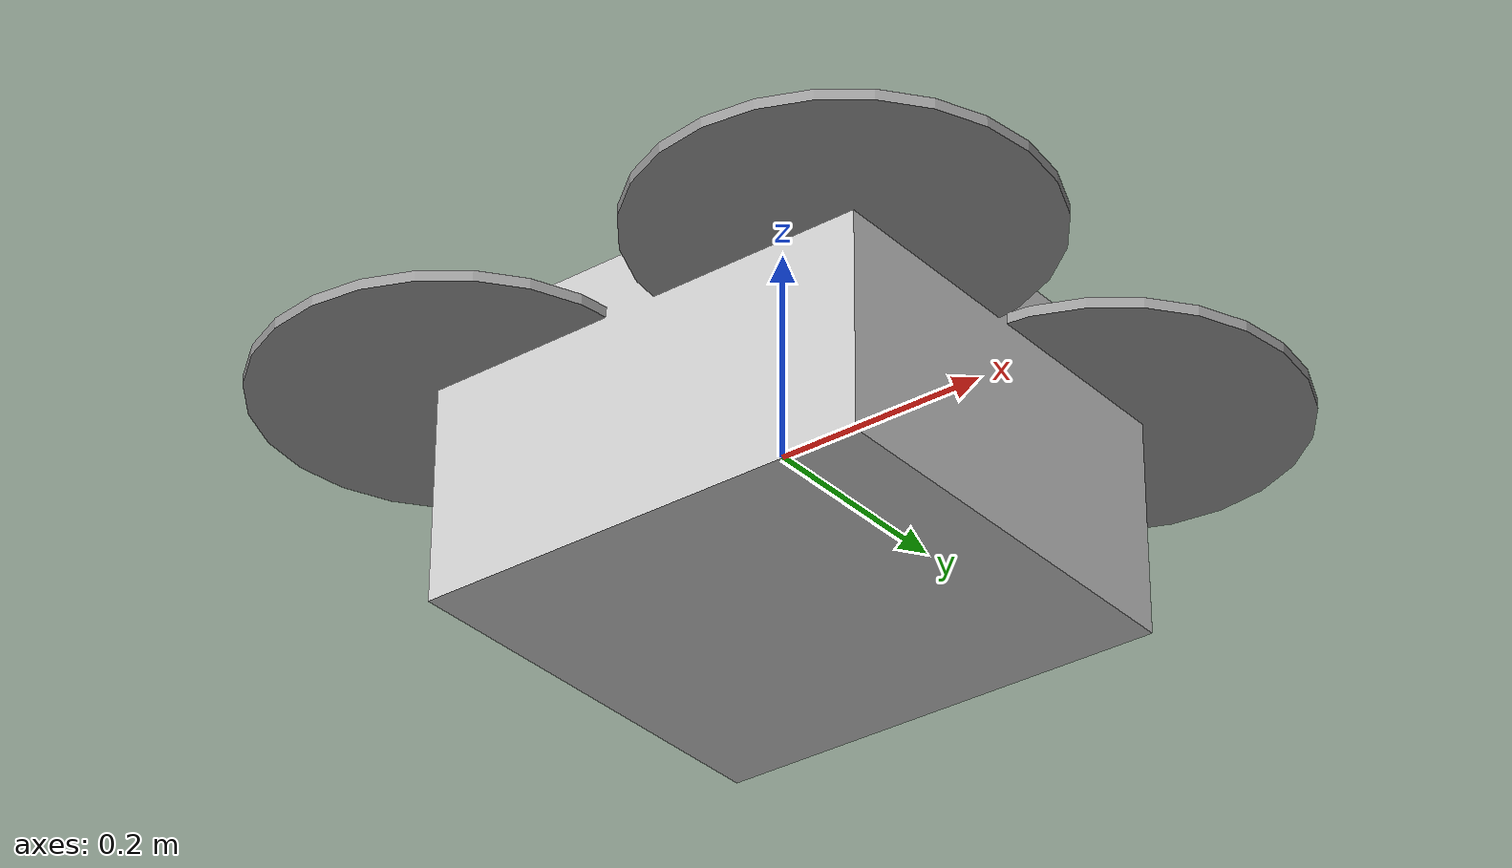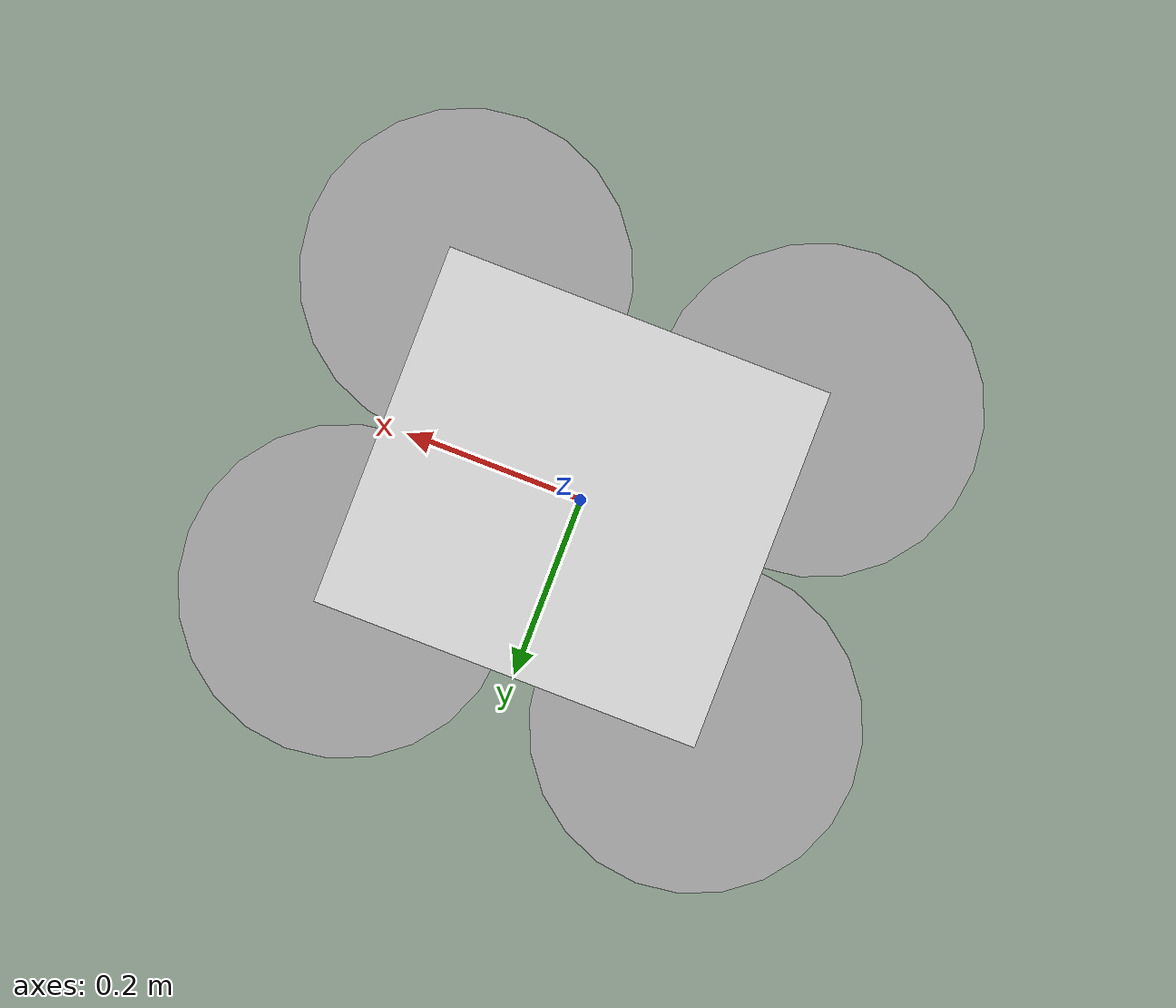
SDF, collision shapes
<?xml version="1.0"?>
<sdf version="1.6">
  <model name="coro_bandicoot_sensor_config_1">
    <pose>0 0 0 0 0 0</pose>
    <link name="base_link">
      <pose frame="">0 0 0 0 -0 0</pose>
      <inertial>
        <pose frame="">0 0 0 0 -0 0</pose>
        <mass>3.182</mass>
        <inertia>
          <ixx>0.0298</ixx>
          <iyy>0.0298</iyy>
          <izz>0.0477</izz>
        </inertia>
      </inertial>
      <collision name="base_link_inertia_collision">
        <pose frame="">0.01 0 -0.0275 0 -0 0</pose>
        <geometry>
          <box>
            <size>0.43 0.4 0.255</size>
          </box>
        </geometry>
      </collision>

      <visual name="plate1_visual">
        <pose>0.0 0.0 0.0 0 0 0</pose>
        <geometry>
	  <box>
	    <size>0.14 0.14 0.001</size>
	  </box>
        </geometry>
        <material>
	  <ambient>0.8 0.8 0.8 1</ambient>
	  <diffuse>0.8 0.8 0.8 1</diffuse>
        </material>
      </visual>
      <visual name="plate2_visual">
        <pose>0.0 0.0 -0.04 0 0 0</pose>
        <geometry>
	  <box>
	    <size>0.14 0.14 0.001</size>
	  </box>
        </geometry>
        <material>
	  <ambient>0.8 0.8 0.8 1</ambient>
	  <diffuse>0.8 0.8 0.8 1</diffuse>
        </material>
      </visual>

      <visual name="computer_visual">
        <pose>0.02 0.01 0.01 0 0 0</pose>
        <geometry>
	  <box>
	    <size>0.1 0.1 0.02</size>
	  </box>
        </geometry>
        <material>
	  <ambient>0.01 0.01 0.01 1</ambient>
	  <diffuse>0.01 0.01 0.01 1</diffuse>
        </material>
      </visual>
      <visual name="battery1_visual">
        <pose>0.13 0.12 -0.04 0 0 0.74</pose>
        <geometry>
	  <box>
	    <size>0.14 0.04 0.06</size>
	  </box>
        </geometry>
        <material>
	  <ambient>0.01 0.01 0.8 1</ambient>
	  <diffuse>0.01 0.01 0.8 1</diffuse>
        </material>
      </visual>
      <visual name="battery2_visual">
        <pose>-0.13 -0.12 -0.04 0 0 0.74</pose>
        <geometry>
	  <box>
	    <size>0.14 0.04 0.06</size>
	  </box>
        </geometry>
        <material>
	  <ambient>0.01 0.01 0.8 1</ambient>
	  <diffuse>0.01 0.01 0.8 1</diffuse>
        </material>
      </visual>

      <visual name="leg1_visual">
        <pose>0.2 0.18 -0.08 0 0 0</pose>
        <geometry>
	  <cylinder>
            <length>0.15</length>
            <radius>0.005</radius>
	  </cylinder>
        </geometry>
        <material>
	  <ambient>0.06 0.06 0.06 1</ambient>
	  <diffuse>0.06 0.06 0.06 1</diffuse>
        </material>
      </visual>
      <visual name="leg2_visual">
        <pose>0.2 -0.18 -0.08 0 0 0</pose>
        <geometry>
	  <cylinder>
            <length>0.15</length>
            <radius>0.005</radius>
	  </cylinder>
        </geometry>
        <material>
	  <ambient>0.06 0.06 0.06 1</ambient>
	  <diffuse>0.06 0.06 0.06 1</diffuse>
        </material>
      </visual>
      <visual name="leg3_visual">
        <pose>-0.2 0.18 -0.08 0 0 0</pose>
        <geometry>
	  <cylinder>
            <length>0.15</length>
            <radius>0.005</radius>
	  </cylinder>
        </geometry>
        <material>
	  <ambient>0.06 0.06 0.06 1</ambient>
	  <diffuse>0.06 0.06 0.06 1</diffuse>
        </material>
      </visual>
      <visual name="leg4_visual">
        <pose>-0.2 -0.18 -0.08 0 0 0</pose>
        <geometry>
	  <cylinder>
            <length>0.15</length>
            <radius>0.005</radius>
	  </cylinder>
        </geometry>
        <material>
	  <ambient>0.06 0.06 0.06 1</ambient>
	  <diffuse>0.06 0.06 0.06 1</diffuse>
        </material>
      </visual>

      <visual name="antenna1_visual">
        <pose>0.05 -0.05 0.05 0 0 0</pose>
        <geometry>
	  <cylinder>
            <length>0.1</length>
            <radius>0.005</radius>
	  </cylinder>
        </geometry>
      </visual>
      <visual name="antenna2_visual">
        <pose>-0.05 -0.05 0.05 0 0 0</pose>
        <geometry>
	  <cylinder>
            <length>0.1</length>
            <radius>0.005</radius>
	  </cylinder>
        </geometry>
        <material>
	  <ambient>0.06 0.06 0.06 1</ambient>
	  <diffuse>0.06 0.06 0.06 1</diffuse>
        </material>
      </visual>

      <visual name="arm1_visual">
        <pose>0.13 0.12 -0.005 0 0 0.74</pose>
        <geometry>
	  <box>
	    <size>0.21 0.03 0.01</size>
	  </box>
        </geometry>
        <material>
	  <ambient>0.06 0.06 0.06 1</ambient>
	  <diffuse>0.06 0.06 0.06 1</diffuse>
        </material>
      </visual>
      <visual name="arm2_visual">
        <pose>0.13 -0.12 -0.005 0 0 -0.74</pose>
        <geometry>
	  <box>
	    <size>0.21 0.03 0.01</size>
	  </box>
        </geometry>
        <material>
	  <ambient>0.06 0.06 0.06 1</ambient>
	  <diffuse>0.06 0.06 0.06 1</diffuse>
        </material>
      </visual>
      <visual name="arm3_visual">
        <pose>-0.13 0.12 -0.005 0 0 -0.74</pose>
        <geometry>
	  <box>
	    <size>0.21 0.03 0.01</size>
	  </box>
        </geometry>
        <material>
	  <ambient>0.98 0.98 0.98 1</ambient>
	  <diffuse>0.98 0.98 0.98 1</diffuse>
        </material>
      </visual>
      <visual name="arm4_visual">
        <pose>-0.13 -0.12 -0.005 0 0 0.74</pose>
        <geometry>
	  <box>
	    <size>0.21 0.03 0.01</size>
	  </box>
        </geometry>
        <material>
	  <ambient>0.98 0.98 0.98 1</ambient>
	  <diffuse>0.98 0.98 0.98 1</diffuse>
        </material>
      </visual>

      <visual name="arm1a_visual">
        <pose>0.06 0.06 -0.025 0 0 0.02</pose>
        <geometry>
	  <box>
	    <size>0.02 0.02 0.03</size>
	  </box>
        </geometry>
        <material>
	  <ambient>0.06 0.06 0.06 1</ambient>
	  <diffuse>0.06 0.06 0.06 1</diffuse>
        </material>
      </visual>
      <visual name="arm2a_visual">
        <pose>0.06 -0.06 -0.025 0 0 0.02</pose>
        <geometry>
	  <box>
	    <size>0.02 0.02 0.03</size>
	  </box>
        </geometry>
        <material>
	  <ambient>0.06 0.06 0.06 1</ambient>
	  <diffuse>0.06 0.06 0.06 1</diffuse>
        </material>
      </visual>
      <visual name="arm3a_visual">
        <pose>-0.06 0.06 -0.025 0 0 0.02</pose>
        <geometry>
	  <box>
	    <size>0.02 0.02 0.03</size>
	  </box>
        </geometry>
        <material>
	  <ambient>0.98 0.98 0.98 1</ambient>
	  <diffuse>0.98 0.98 0.98 1</diffuse>
        </material>
      </visual>
      <visual name="arm4a_visual">
        <pose>-0.06 -0.06 -0.025 0 0 0.02</pose>
        <geometry>
	  <box>
	    <size>0.02 0.02 0.03</size>
	  </box>
        </geometry>
        <material>
	  <ambient>0.98 0.98 0.98 1</ambient>
	  <diffuse>0.98 0.98 0.98 1</diffuse>
        </material>
      </visual>

      <visual name="motor1_visual">
        <pose>0.2 0.18 0.02 0 0 0</pose>
        <geometry>
	  <cylinder>
            <length>0.04</length>
            <radius>0.02</radius>
	  </cylinder>
        </geometry>
        <material>
	  <ambient>0.08 0.08 0.08 1</ambient>
	  <diffuse>0.08 0.08 0.08 1</diffuse>
        </material>
      </visual>
      <visual name="motor2_visual">
        <pose>-0.2 0.18 0.02 0 0 0</pose>
        <geometry>
	  <cylinder>
            <length>0.04</length>
            <radius>0.02</radius>
	  </cylinder>
        </geometry>
        <material>
	  <ambient>0.08 0.08 0.08 1</ambient>
	  <diffuse>0.08 0.08 0.08 1</diffuse>
        </material>
      </visual>
      <visual name="motor3_visual">
        <pose>0.2 -0.18 0.02 0 0 0</pose>
        <geometry>
	  <cylinder>
            <length>0.04</length>
            <radius>0.02</radius>
	  </cylinder>
        </geometry>
        <material>
	  <ambient>0.08 0.08 0.08 1</ambient>
	  <diffuse>0.08 0.08 0.08 1</diffuse>
        </material>
      </visual>
      <visual name="motor4_visual">
        <pose>-0.2 -0.18 0.02 0 0 0</pose>
        <geometry>
	  <cylinder>
            <length>0.04</length>
            <radius>0.02</radius>
	  </cylinder>
        </geometry>
        <material>
	  <ambient>0.08 0.08 0.08 1</ambient>
	  <diffuse>0.08 0.08 0.08 1</diffuse>
        </material>
      </visual>

      <visual name="camera_mount_visual">
        <pose>-0.07 0 0  0 0 0</pose>
        <geometry>
	  <box>
	    <size>0.001 0.038 0.08</size>
	  </box>
        </geometry>
        <material>
	  <ambient>0.8 0.8 0.8 1</ambient>
	  <diffuse>0.8 0.8 0.8 1</diffuse>
        </material>
      </visual>

      <visual name="lightbar1_visual">
        <pose>0.206 0.18 -0.06  0 0 0</pose>
        <geometry>
	  <box>
	    <size>0.001 0.038 0.04</size>
	  </box>
        </geometry>
        <material>
	  <ambient>0.8 0.8 0.8 1</ambient>
	  <diffuse>0.8 0.8 0.8 1</diffuse>
        </material>
      </visual>
      <visual name="lightbar2_visual">
        <pose>-0.206 -0.18 -0.08  0 0 0</pose>
        <geometry>
	  <box>
	    <size>0.001 0.038 0.04</size>
	  </box>
        </geometry>
        <material>
	  <ambient>0.8 0.8 0.8 1</ambient>
	  <diffuse>0.8 0.8 0.8 1</diffuse>
        </material>
      </visual>

      <light name="light_source_front_left" type="spot">
        <pose>0.21 0.19 -0.06 0 -1.5707963267948966 0.75</pose>
        <attenuation>
          <range>25</range>
          <linear>0</linear>
          <constant>0.1</constant>
          <quadratic>0.01</quadratic>
        </attenuation>
        <diffuse>0.8 0.8 0.5 1</diffuse>
        <specular>0.8 0.8 0.5 1</specular>
        <spot>
          <inner_angle>1.5</inner_angle>
          <outer_angle>2.5</outer_angle>
          <falloff>1</falloff>
        </spot>
        <direction>1 0 0</direction>
        <cast_shadows>1</cast_shadows>
      </light>
      <light name="light_source_front_right" type="spot">
        <pose>0.21 0.17 -0.06 0 -1.5707963267948966 -0.75</pose>
        <attenuation>
          <range>25</range>
          <linear>0</linear>
          <constant>0.1</constant>
          <quadratic>0.01</quadratic>
        </attenuation>
        <diffuse>0.8 0.8 0.5 1</diffuse>
        <specular>0.8 0.8 0.5 1</specular>
        <spot>
          <inner_angle>1.5</inner_angle>
          <outer_angle>2.5</outer_angle>
          <falloff>1</falloff>
        </spot>
        <direction>-1 0 0</direction>
        <cast_shadows>1</cast_shadows>
      </light>
      <light name="light_source_rear_left" type="spot">
        <pose>-0.21 -0.19 -0.06 0 1.5707963267948966 -0.75</pose>
        <attenuation>
          <range>25</range>
          <linear>0</linear>
          <constant>0.1</constant>
          <quadratic>0.01</quadratic>
        </attenuation>
        <diffuse>0.8 0.8 0.5 1</diffuse>
        <specular>0.8 0.8 0.5 1</specular>
        <spot>
          <inner_angle>1.5</inner_angle>
          <outer_angle>2.5</outer_angle>
          <falloff>1</falloff>
        </spot>
        <direction>1 0 0</direction>
        <cast_shadows>1</cast_shadows>
      </light>
      <light name="light_source_rear_right" type="spot">
        <pose>-0.21 -0.17 -0.06 0 1.5707963267948966 0.75</pose>
        <attenuation>
          <range>25</range>
          <linear>0</linear>
          <constant>0.1</constant>
          <quadratic>0.01</quadratic>
        </attenuation>
        <diffuse>0.8 0.8 0.5 1</diffuse>
        <specular>0.8 0.8 0.5 1</specular>
        <spot>
          <inner_angle>1.5</inner_angle>
          <outer_angle>2.5</outer_angle>
          <falloff>1</falloff>
        </spot>
        <direction>-1 0 0</direction>
        <cast_shadows>1</cast_shadows>
      </light>
      <light name="light_source_up" type="spot">
        <pose>0 0.06 0.01 0 3.14159 0</pose>
        <attenuation>
          <range>15</range>
          <linear>0</linear>
          <constant>0.1</constant>
          <quadratic>0.01</quadratic>
        </attenuation>
        <diffuse>0.8 0.8 0.5 1</diffuse>
        <specular>0.8 0.8 0.5 1</specular>
        <spot>
          <inner_angle>1</inner_angle>
          <outer_angle>2.5</outer_angle>
          <falloff>1</falloff>
        </spot>
        <direction>0 0 -1</direction>
        <cast_shadows>1</cast_shadows>
      </light>
      <light name="light_source_down" type="spot">
        <pose>-0.05 0 -0.05 3.14159 3.14159 0</pose>
        <attenuation>
          <range>15</range>
          <linear>0</linear>
          <constant>0.1</constant>
          <quadratic>0.01</quadratic>
        </attenuation>
        <diffuse>0.8 0.8 0.5 1</diffuse>
        <specular>0.8 0.8 0.5 1</specular>
        <spot>
          <inner_angle>1.5</inner_angle>
          <outer_angle>2.5</outer_angle>
          <falloff>1</falloff>
        </spot>
        <direction>1 0 0</direction>
        <cast_shadows>1</cast_shadows>
      </light>

      <visual name='ouster_visual'>
        <pose>0.02 0 -0.04 3.141592653589793 0 -1.570796327</pose>
        <geometry>
          <mesh>
            <scale>1 1 1</scale>
            <uri>meshes/os1_64.dae</uri>
          </mesh>
        </geometry>
      </visual>

      <sensor name="front_laser" type="gpu_lidar">
        <pose>0.02 0 -0.04 3.141592653589793 0 0</pose>
        <update_rate>20</update_rate>
        <lidar>
          <scan>
            <horizontal>
              <samples>1024</samples>
              <resolution>1</resolution>
              <min_angle>-3.14159</min_angle>
              <max_angle>3.14159</max_angle>
            </horizontal>
            <vertical>
              <samples>64</samples>
              <resolution>1</resolution>
              <min_angle>-0.785398163397</min_angle>
              <max_angle>0.785398163397</max_angle>
            </vertical>
          </scan>
          <range>
            <min>0.3</min>
            <max>50</max>
            <resolution>0.003</resolution>
          </range>
          <noise>
              <type>gaussian</type>
              <mean>0</mean>
              <stddev>0.03</stddev>
          </noise>
        </lidar>
      </sensor>

      <sensor name="imu_sensor" type="imu">
        <always_on>1</always_on>
        <update_rate>250</update_rate>
        <imu>
          <enable_orientation>0</enable_orientation>
          <angular_velocity>
            <x>
              <noise type="gaussian">
                <mean>0</mean>
                <stddev>0.009</stddev>
                <bias_mean>0.00075</bias_mean>
                <bias_stddev>0.005</bias_stddev>
                <dynamic_bias_stddev>0.00002</dynamic_bias_stddev>
                <dynamic_bias_correlation_time>400.0</dynamic_bias_correlation_time>
                <precision>0.00025</precision>
              </noise>
            </x>
            <y>
              <noise type="gaussian">
                <mean>0</mean>
                <stddev>0.009</stddev>
                <bias_mean>0.00075</bias_mean>
                <bias_stddev>0.005</bias_stddev>
                <dynamic_bias_stddev>0.00002</dynamic_bias_stddev>
                <dynamic_bias_correlation_time>400.0</dynamic_bias_correlation_time>
                <precision>0.00025</precision>
              </noise>
            </y>
            <z>
              <noise type="gaussian">
                <mean>0</mean>
                <stddev>0.009</stddev>
                <bias_mean>0.00075</bias_mean>
                <bias_stddev>0.005</bias_stddev>
                <dynamic_bias_stddev>0.00002</dynamic_bias_stddev>
                <dynamic_bias_correlation_time>400.0</dynamic_bias_correlation_time>
                <precision>0.00025</precision>
              </noise>
            </z>
          </angular_velocity>
          <linear_acceleration>
            <x>
              <noise type="gaussian">
                <mean>0</mean>
                <stddev>0.021</stddev>
                <bias_mean>0.05</bias_mean>
                <bias_stddev>0.0075</bias_stddev>
                <dynamic_bias_stddev>0.000375</dynamic_bias_stddev>
                <dynamic_bias_correlation_time>175.0</dynamic_bias_correlation_time>
                <precision>0.005</precision>
              </noise>
            </x>
            <y>
              <noise type="gaussian">
                <mean>0</mean>
                <stddev>0.021</stddev>
                <bias_mean>0.05</bias_mean>
                <bias_stddev>0.0075</bias_stddev>
                <dynamic_bias_stddev>0.000375</dynamic_bias_stddev>
                <dynamic_bias_correlation_time>175.0</dynamic_bias_correlation_time>
                <precision>0.005</precision>
              </noise>
            </y>
            <z>
              <noise type="gaussian">
                <mean>0</mean>
                <stddev>0.021</stddev>
                <bias_mean>0.05</bias_mean>
                <bias_stddev>0.0075</bias_stddev>
                <dynamic_bias_stddev>0.000375</dynamic_bias_stddev>
                <dynamic_bias_correlation_time>175.0</dynamic_bias_correlation_time>
                <precision>0.005</precision>
              </noise>
            </z>
          </linear_acceleration>
        </imu>
      </sensor>
      <sensor name="air_pressure" type="air_pressure">
        <always_on>1</always_on>
        <update_rate>20</update_rate>
        <air_pressure>
          <reference_altitude>0</reference_altitude>
          <noise type="gaussian">
            <mean>0.00000008</mean>
          </noise>
        </air_pressure>
      </sensor>
      <sensor name="magnetometer" type="magnetometer">
        <always_on>1</always_on>
        <update_rate>20</update_rate>
        <magnetometer>
          <x>
            <noise type="gaussian">
              <mean>0.000000080</mean>
              <bias_mean>0.000000400</bias_mean>
            </noise>
          </x>
          <y>
            <noise type="gaussian">
              <mean>0.000000080</mean>
              <bias_mean>0.000000400</bias_mean>
            </noise>
          </y>
          <z>
            <noise type="gaussian">
              <mean>0.000000080</mean>
              <bias_mean>0.000000400</bias_mean>
            </noise>
          </z>
        </magnetometer>
      </sensor>

      <visual name="d435_dae_up_visual">
        <pose>-0.07 0 0.04 0 -1.570796327 3.141592653589793</pose>
        <geometry>
	  <mesh>
	    <scale>0.001 0.001 0.001</scale>
	    <uri>meshes/realsense_d435.dae</uri>
	  </mesh>
        </geometry>
      </visual>
      <visual name="d435_dae_down_visual">
        <pose>-0.07 0 -0.01  0 1.570796327 3.141592653589793</pose>
        <geometry>
	  <mesh>
	    <scale>0.001 0.001 0.001</scale>
	    <uri>meshes/realsense_d435.dae</uri>
	  </mesh>
        </geometry>
      </visual>

      <sensor name="rgbd_up" type="rgbd_camera">
        <pose>-0.055 0 0.067 0 -1.570796327 3.141592653589793</pose>
        <always_on>1</always_on>
        <update_rate>30</update_rate>
        <camera name="rgbd_up">
          <horizontal_fov>1.50098</horizontal_fov>
          <lens>
            <intrinsics>
              <!-- fx = fy = width / ( 2 * tan (hfov / 2 ) ) -->
              <fx>343.159</fx>
              <fy>343.159</fy>
              <!-- cx = ( width - 1 ) / 2 -->
              <cx>319.5</cx>
              <!-- cy = ( height - 1 ) / 2 -->
              <cy>179.5</cy>
              <s>0</s>
            </intrinsics>
          </lens>
          <distortion>
            <k1>0.0</k1>
            <k2>0.0</k2>
            <k3>0.0</k3>
            <p1>0.0</p1>
            <p2>0.0</p2>
            <center>0.5 0.5</center>
          </distortion>
          <image>
            <width>640</width>
            <height>360</height>
            <format>R8G8B8</format>
          </image>
          <clip>
            <near>0.01</near>
            <far>300</far>
          </clip>
          <depth_camera>
            <clip>
              <near>0.1</near>
              <far>10</far>
            </clip>
          </depth_camera>
          <noise>
            <type>gaussian</type>
            <mean>0</mean>
            <stddev>0.007</stddev>
          </noise>
        </camera>
      </sensor>

      <sensor name="rgbd_down" type="rgbd_camera">
        <pose>-0.083 0 -0.037 0 1.570796327 3.141592653589793 </pose>
        <always_on>1</always_on>
        <update_rate>30</update_rate>
        <camera name="rgbd_down">
          <horizontal_fov>1.50098</horizontal_fov>
          <lens>
            <intrinsics>
              <!-- fx = fy = width / ( 2 * tan (hfov / 2 ) ) -->
              <fx>343.159</fx>
              <fy>343.159</fy>
              <!-- cx = ( width - 1 ) / 2 -->
              <cx>319.5</cx>
              <!-- cy = ( height - 1 ) / 2 -->
              <cy>179.5</cy>
              <s>0</s>
            </intrinsics>
          </lens>
          <distortion>
            <k1>0.0</k1>
            <k2>0.0</k2>
            <k3>0.0</k3>
            <p1>0.0</p1>
            <p2>0.0</p2>
            <center>0.5 0.5</center>
          </distortion>
          <image>
            <width>640</width>
            <height>360</height>
            <format>R8G8B8</format>
          </image>
          <clip>
            <near>0.01</near>
            <far>300</far>
          </clip>
          <depth_camera>
            <clip>
              <near>0.1</near>
              <far>10</far>
            </clip>
          </depth_camera>
          <noise>
            <type>gaussian</type>
            <mean>0</mean>
            <stddev>0.007</stddev>
          </noise>
        </camera>
      </sensor>

      <visual name="camera_front_left_visual">
        <pose>0.205 0.19 -0.1 0 0 0.785398163</pose>
        <geometry>
          <box>
            <size>0.01 0.02 0.02</size>
          </box>
        </geometry>
        <material>
          <ambient>0.0 0.2 0.0 1.0</ambient>
          <diffuse>0.0 0.2 0.0 1.0</diffuse>
        </material>
      </visual>
      <visual name="camera_lens_front_left_visual">
        <pose>0.212 0.197 -0.1 0 1.5707963267948966 0.785398163</pose>
        <geometry>
          <cylinder>
            <length>0.011</length>
            <radius>0.005</radius>
          </cylinder>
        </geometry>
        <material>
          <ambient>0.0 0.0 0.0 1.0</ambient>
          <diffuse>0.0 0.0 0.0 1.0</diffuse>
        </material>
      </visual>

      <visual name="camera_front_right_visual">
        <pose>0.205 0.17 -0.1 0 0 -0.785398163</pose>
        <geometry>
          <box>
            <size>0.01 0.02 0.02</size>
          </box>
        </geometry>
        <material>
          <ambient>0.0 0.2 0.0 1.0</ambient>
          <diffuse>0.0 0.2 0.0 1.0</diffuse>
        </material>
      </visual>
      <visual name="camera_lens_front_right_visual">
        <pose>0.212 0.163 -0.1 0 1.5707963267948966 -0.785398163</pose>
        <geometry>
          <cylinder>
            <length>0.011</length>
            <radius>0.005</radius>
          </cylinder>
        </geometry>
        <material>
          <ambient>0.0 0.0 0.0 1.0</ambient>
          <diffuse>0.0 0.0 0.0 1.0</diffuse>
        </material>
      </visual>

      <visual name="camera_rear_left_visual">
        <pose>-0.08 0.01 0.05 0 0 -0.785398163</pose>
        <geometry>
          <box>
            <size>0.01 0.02 0.02</size>
          </box>
        </geometry>
        <material>
          <ambient>0.0 0.2 0.0 1.0</ambient>
          <diffuse>0.0 0.2 0.0 1.0</diffuse>
        </material>
      </visual>
      <visual name="camera_lens_rear_left_visual">
        <pose>-0.087 0.017 0.05 0 1.5707963267948966 -0.785398163</pose>
        <geometry>
          <cylinder>
            <length>0.011</length>
            <radius>0.005</radius>
          </cylinder>
        </geometry>
        <material>
          <ambient>0.0 0.0 0.0 1.0</ambient>
          <diffuse>0.0 0.0 0.0 1.0</diffuse>
        </material>
      </visual>

      <visual name="camera_rear_right_visual">
        <pose>-0.08 -0.01 0.05 0 0 0.785398163</pose>
        <geometry>
          <box>
            <size>0.01 0.02 0.02</size>
          </box>
        </geometry>
        <material>
          <ambient>0.0 0.2 0.0 1.0</ambient>
          <diffuse>0.0 0.2 0.0 1.0</diffuse>
        </material>
      </visual>
      <visual name="camera_lens_rear_right_visual">
        <pose>-0.087 -0.017 0.05 0 1.5707963267948966 0.785398163</pose>
        <geometry>
          <cylinder>
            <length>0.011</length>
            <radius>0.005</radius>
          </cylinder>
        </geometry>
        <material>
          <ambient>0.0 0.0 0.0 1.0</ambient>
          <diffuse>0.0 0.0 0.0 1.0</diffuse>
        </material>
      </visual>

      <!-- Physical robot has two B0247 with LN008 with a 180 deg hor x 130 deg vert FOV
           Since fisheye cameras are not modeled, four cameras are used in the model -->
      <sensor name="camera_front_left" type="camera">
        <pose>0.219 0.204 -0.1 0 0 0.785398163</pose>
        <always_on>1</always_on>
        <update_rate>25</update_rate>
        <camera name="camera_front_left">
          <horizontal_fov>1.658</horizontal_fov>
          <lens>
            <intrinsics>
              <!-- fx = fy = width / ( 2 * tan (hfov / 2 ) ) -->
              <fx>329.9</fx>
              <fy>329.9</fy>
              <!-- cx = ( width - 1 ) / 2 -->
              <cx>359.5</cx>
              <!-- cy = ( height - 1 ) / 2 -->
              <cy>539.5</cy>
              <s>0</s>
            </intrinsics>
          </lens>
          <distortion>
            <k1>0.0</k1>
            <k2>0.0</k2>
            <k3>0.0</k3>
            <p1>0.0</p1>
            <p2>0.0</p2>
            <center>0.5 0.5</center>
          </distortion>
          <image>
            <width>720</width>
            <height>1080</height>
            <format>R8G8B8</format>
          </image>
          <clip>
            <near>0.01</near>
            <far>300</far>
          </clip>
          <noise>
            <type>gaussian</type>
            <mean>0</mean>
            <stddev>0.007</stddev>
          </noise>
        </camera>
      </sensor>

      <sensor name="camera_front_right" type="camera">
        <pose>0.219 0.156 -0.1 0 0 -0.785398163</pose>
        <always_on>1</always_on>
        <update_rate>25</update_rate>
        <camera name="camera_front_right">
          <horizontal_fov>1.658</horizontal_fov>
          <lens>
            <intrinsics>
              <!-- fx = fy = width / ( 2 * tan (hfov / 2 ) ) -->
              <fx>329.9</fx>
              <fy>329.9</fy>
              <!-- cx = ( width - 1 ) / 2 -->
              <cx>359.5</cx>
              <!-- cy = ( height - 1 ) / 2 -->
              <cy>539.5</cy>
              <s>0</s>
            </intrinsics>
          </lens>
          <distortion>
            <k1>0.0</k1>
            <k2>0.0</k2>
            <k3>0.0</k3>
            <p1>0.0</p1>
            <p2>0.0</p2>
            <center>0.5 0.5</center>
          </distortion>
          <image>
            <width>720</width>
            <height>1080</height>
            <format>R8G8B8</format>
          </image>
          <clip>
            <near>0.01</near>
            <far>300</far>
          </clip>
          <noise>
            <type>gaussian</type>
            <mean>0</mean>
            <stddev>0.007</stddev>
          </noise>
        </camera>
      </sensor>

      <sensor name="camera_rear_left" type="camera">
        <pose>-0.094 0.024 0.05 0 0 2.35619449</pose>
        <always_on>1</always_on>
        <update_rate>25</update_rate>
        <camera name="camera_rear_left">
          <horizontal_fov>1.658</horizontal_fov>
          <lens>
            <intrinsics>
              <!-- fx = fy = width / ( 2 * tan (hfov / 2 ) ) -->
              <fx>329.9</fx>
              <fy>329.9</fy>
              <!-- cx = ( width - 1 ) / 2 -->
              <cx>359.5</cx>
              <!-- cy = ( height - 1 ) / 2 -->
              <cy>539.5</cy>
              <s>0</s>
            </intrinsics>
          </lens>
          <distortion>
            <k1>0.0</k1>
            <k2>0.0</k2>
            <k3>0.0</k3>
            <p1>0.0</p1>
            <p2>0.0</p2>
            <center>0.5 0.5</center>
          </distortion>
          <image>
            <width>720</width>
            <height>1080</height>
            <format>R8G8B8</format>
          </image>
          <clip>
            <near>0.01</near>
            <far>300</far>
          </clip>
          <noise>
            <type>gaussian</type>
            <mean>0</mean>
            <stddev>0.007</stddev>
          </noise>
        </camera>
      </sensor>

      <sensor name="camera_rear_right" type="camera">
        <pose>-0.094 -0.024 0.05 0 0 -2.35619449</pose>
        <always_on>1</always_on>
        <update_rate>25</update_rate>
        <camera name="camera_rear_right">
          <horizontal_fov>1.658</horizontal_fov>
          <lens>
            <intrinsics>
              <!-- fx = fy = width / ( 2 * tan (hfov / 2 ) ) -->
              <fx>329.9</fx>
              <fy>329.9</fy>
              <!-- cx = ( width - 1 ) / 2 -->
              <cx>359.5</cx>
              <!-- cy = ( height - 1 ) / 2 -->
              <cy>539.5</cy>
              <s>0</s>
            </intrinsics>
          </lens>
          <distortion>
            <k1>0.0</k1>
            <k2>0.0</k2>
            <k3>0.0</k3>
            <p1>0.0</p1>
            <p2>0.0</p2>
            <center>0.5 0.5</center>
          </distortion>
          <image>
            <width>720</width>
            <height>1080</height>
            <format>R8G8B8</format>
          </image>
          <clip>
            <near>0.01</near>
            <far>300</far>
          </clip>
          <noise>
            <type>gaussian</type>
            <mean>0</mean>
            <stddev>0.007</stddev>
          </noise>
        </camera>
      </sensor>

      <sensor name="bottom_laser" type="gpu_ray">
        <pose>0.15 -0.15 -0.02 0 -1.57 0</pose>
        <update_rate>50</update_rate>
        <lidar>
          <scan>
            <horizontal>
              <samples>1</samples>
              <resolution>1</resolution>
              <min_angle>3.141592654</min_angle>
              <max_angle>3.141592654</max_angle>
            </horizontal>
          </scan>
          <range>
            <min>0.05</min>
            <max>40</max>
            <resolution>0.01</resolution>
          </range>
          <noise>
            <type>gaussian</type>
            <mean>0</mean>
            <stddev>0.01</stddev>
          </noise>
        </lidar>
      </sensor>
    </link>

    <link name="rotor_0">
      <pose frame="">0.2 -0.18 0.05 0 -0 0</pose>
      <inertial>
        <pose frame="">0 0 0 0 -0 0</pose>
        <mass>0.024</mass>
        <inertia>
          <ixx>1e-05</ixx>
          <ixy>0</ixy>
          <ixz>0</ixz>
          <iyy>4e-04</iyy>
          <iyz>0</iyz>
          <izz>4e-04</izz>
        </inertia>
      </inertial>
      <collision name="rotor_0_collision">
        <pose frame="">0 0 0 0 -0 0</pose>
        <geometry>
          <cylinder>
            <length>0.01</length>
            <radius>0.178</radius>
          </cylinder>
        </geometry>
        <surface>
          <contact>
            <ode/>
          </contact>
          <friction>
            <ode/>
          </friction>
        </surface>
      </collision>
      <visual name="rotor_0_visual">
        <pose frame="">0 0 0 0 -0 0</pose>
        <geometry>
          <mesh>
            <scale>0.178 0.178 0.178</scale>
            <uri>meshes/propeller_ccw.dae</uri>
          </mesh>
        </geometry>
        <material>
          <diffuse>0.5 0.5 0.5 1</diffuse>
          <script>
            <name>Gazebo/Grey</name>
            <uri>file://media/materials/scripts/gazebo.material</uri>
          </script>
        </material>
        <cast_shadows>0</cast_shadows>
      </visual>
      <gravity>1</gravity>
      <velocity_decay/>
    </link>
    <joint name="rotor_0_joint" type="revolute">
      <child>rotor_0</child>
      <parent>base_link</parent>
      <axis>
        <xyz>0 0 1</xyz>
        <limit>
          <lower>-1e+16</lower>
          <upper>1e+16</upper>
        </limit>
        <dynamics>
          <spring_reference>0</spring_reference>
          <spring_stiffness>0</spring_stiffness>
        </dynamics>
        <use_parent_model_frame>1</use_parent_model_frame>
      </axis>
    </joint>
    <link name="rotor_1">
      <pose frame="">-0.2 0.18 0.05 0 -0 0</pose>
      <inertial>
        <pose frame="">0 0 0 0 -0 0</pose>
        <mass>0.024</mass>
        <inertia>
          <ixx>1e-05</ixx>
          <ixy>0</ixy>
          <ixz>0</ixz>
          <iyy>4e-04</iyy>
          <iyz>0</iyz>
          <izz>4e-04</izz>
        </inertia>
      </inertial>
      <collision name="rotor_1_collision">
        <pose frame="">0 0 0 0 -0 0</pose>
        <geometry>
          <cylinder>
            <length>0.01</length>
            <radius>0.178</radius>
          </cylinder>
        </geometry>
        <surface>
          <contact>
            <ode/>
          </contact>
          <friction>
            <ode/>
          </friction>
        </surface>
      </collision>
      <visual name="rotor_1_visual">
        <pose frame="">0 0 0 0 -0 0</pose>
        <geometry>
          <mesh>
            <scale>0.178 0.178 0.178</scale>
            <uri>meshes/propeller_ccw.dae</uri>
          </mesh>
        </geometry>
        <material>
          <diffuse>0.5 0.5 0.5 1</diffuse>
          <script>
            <name>Gazebo/Grey</name>
            <uri>file://media/materials/scripts/gazebo.material</uri>
          </script>
        </material>
        <cast_shadows>0</cast_shadows>
      </visual>
      <gravity>1</gravity>
      <velocity_decay/>
    </link>
    <joint name="rotor_1_joint" type="revolute">
      <child>rotor_1</child>
      <parent>base_link</parent>
      <axis>
        <xyz>0 0 1</xyz>
        <limit>
          <lower>-1e+16</lower>
          <upper>1e+16</upper>
        </limit>
        <dynamics>
          <spring_reference>0</spring_reference>
          <spring_stiffness>0</spring_stiffness>
        </dynamics>
        <use_parent_model_frame>1</use_parent_model_frame>
      </axis>
    </joint>
    <link name="rotor_2">
      <pose frame="">0.2 0.18 0.05 0 -0 0</pose>
      <inertial>
        <pose frame="">0 0 0 0 -0 0</pose>
        <mass>0.024</mass>
        <inertia>
          <ixx>1e-05</ixx>
          <ixy>0</ixy>
          <ixz>0</ixz>
          <iyy>4e-04</iyy>
          <iyz>0</iyz>
          <izz>4e-04</izz>
        </inertia>
      </inertial>
      <collision name="rotor_2_collision">
        <pose frame="">0 0 0 0 -0 0</pose>
        <geometry>
          <cylinder>
            <length>0.01</length>
            <radius>0.178</radius>
          </cylinder>
        </geometry>
        <surface>
          <contact>
            <ode/>
          </contact>
          <friction>
            <ode/>
          </friction>
        </surface>
      </collision>
      <visual name="rotor_2_visual">
        <pose frame="">0 0 0 0 -0 0</pose>
        <geometry>
          <mesh>
            <scale>0.178 0.178 0.178</scale>
            <uri>meshes/propeller_cw.dae</uri>
          </mesh>
        </geometry>
        <material>
          <diffuse>0.5 0.5 0.5 1</diffuse>
          <script>
            <name>Gazebo/Grey</name>
            <uri>file://media/materials/scripts/gazebo.material</uri>
          </script>
        </material>
        <cast_shadows>0</cast_shadows>
      </visual>
      <gravity>1</gravity>
      <velocity_decay/>
    </link>
    <joint name="rotor_2_joint" type="revolute">
      <child>rotor_2</child>
      <parent>base_link</parent>
      <axis>
        <xyz>0 0 1</xyz>
        <limit>
          <lower>-1e+16</lower>
          <upper>1e+16</upper>
        </limit>
        <dynamics>
          <spring_reference>0</spring_reference>
          <spring_stiffness>0</spring_stiffness>
        </dynamics>
        <use_parent_model_frame>1</use_parent_model_frame>
      </axis>
    </joint>
    <link name="rotor_3">
      <pose frame="">-0.2 -0.18 0.05 0 -0 0</pose>
      <inertial>
        <pose frame="">0 0 0 0 -0 0</pose>
        <mass>0.024</mass>
        <inertia>
          <ixx>1e-05</ixx>
          <ixy>0</ixy>
          <ixz>0</ixz>
          <iyy>4e-04</iyy>
          <iyz>0</iyz>
          <izz>4e-04</izz>
        </inertia>
      </inertial>
      <collision name="rotor_3_collision">
        <pose frame="">0 0 0 0 -0 0</pose>
        <geometry>
          <cylinder>
            <length>0.01</length>
            <radius>0.178</radius>
          </cylinder>
        </geometry>
        <surface>
          <contact>
            <ode/>
          </contact>
          <friction>
            <ode/>
          </friction>
        </surface>
      </collision>
      <visual name="rotor_3_visual">
        <pose frame="">0 0 0 0 -0 0</pose>
        <geometry>
          <mesh>
            <scale>0.178 0.178 0.178</scale>
            <uri>meshes/propeller_cw.dae</uri>
          </mesh>
        </geometry>
        <material>
          <diffuse>0.5 0.5 0.5 1</diffuse>
          <script>
            <name>Gazebo/Grey</name>
            <uri>file://media/materials/scripts/gazebo.material</uri>
          </script>
        </material>
        <cast_shadows>0</cast_shadows>
      </visual>
      <gravity>1</gravity>
      <velocity_decay/>
    </link>
    <joint name="rotor_3_joint" type="revolute">
      <child>rotor_3</child>
      <parent>base_link</parent>
      <axis>
        <xyz>0 0 1</xyz>
        <limit>
          <lower>-1e+16</lower>
          <upper>1e+16</upper>
        </limit>
        <dynamics>
          <spring_reference>0</spring_reference>
          <spring_stiffness>0</spring_stiffness>
        </dynamics>
        <use_parent_model_frame>1</use_parent_model_frame>
      </axis>
    </joint>
  </model>
</sdf>
